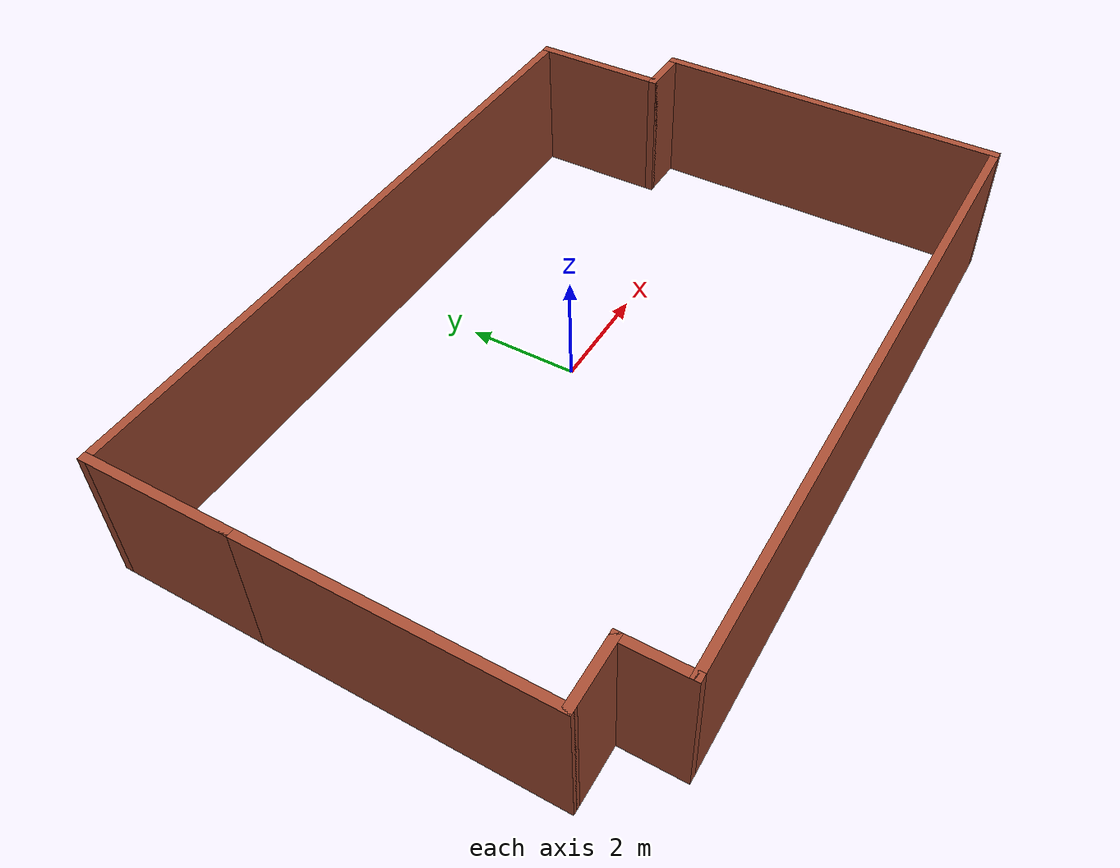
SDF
<?xml version='1.0'?>
<sdf version='1.6'>
  <model name='brick_wall'>
    <pose frame=''>-0.26791 -0.706065 0 0 -0 0</pose>
    <link name='Wall_0'>
      <collision name='Wall_0_Collision'>
        <geometry>
          <box>
            <size>5.25 0.15 2.5</size>
          </box>
        </geometry>
        <pose frame=''>0 0 1.25 0 -0 0</pose>
      </collision>
      <visual name='Wall_0_Visual'>
        <pose frame=''>0 0 1.25 0 -0 0</pose>
        <geometry>
          <box>
            <size>5.25 0.15 2.5</size>
          </box>
        </geometry>
        <material>
          <script>
            <uri>file://media/materials/scripts/gazebo.material</uri>
            <name>Gazebo/Bricks</name>
          </script>
          <ambient>1 1 1 1</ambient>
        </material>
        <meta>
          <layer>0</layer>
        </meta>
      </visual>
      <pose frame=''>-6.475 -0.7 0 0 0 -1.5708</pose>
    </link>
    <link name='Wall_1'>
      <collision name='Wall_1_Collision'>
        <geometry>
          <box>
            <size>1.25 0.15 2.5</size>
          </box>
        </geometry>
        <pose frame=''>0 0 1.25 0 -0 0</pose>
      </collision>
      <visual name='Wall_1_Visual'>
        <pose frame=''>0 0 1.25 0 -0 0</pose>
        <geometry>
          <box>
            <size>1.25 0.15 2.5</size>
          </box>
        </geometry>
        <material>
          <script>
            <uri>file://media/materials/scripts/gazebo.material</uri>
            <name>Gazebo/Bricks</name>
          </script>
          <ambient>1 1 1 1</ambient>
        </material>
        <meta>
          <layer>0</layer>
        </meta>
      </visual>
      <pose frame=''>-5.925 -3.25 0 0 -0 0</pose>
    </link>
    <link name='Wall_2'>
      <collision name='Wall_2_Collision'>
        <geometry>
          <box>
            <size>1.25 0.15 2.5</size>
          </box>
        </geometry>
        <pose frame=''>0 0 1.25 0 -0 0</pose>
      </collision>
      <visual name='Wall_2_Visual'>
        <pose frame=''>0 0 1.25 0 -0 0</pose>
        <geometry>
          <box>
            <size>1.25 0.15 2.5</size>
          </box>
        </geometry>
        <material>
          <script>
            <uri>file://media/materials/scripts/gazebo.material</uri>
            <name>Gazebo/Bricks</name>
          </script>
          <ambient>1 1 1 1</ambient>
        </material>
        <meta>
          <layer>0</layer>
        </meta>
      </visual>
      <pose frame=''>-5.375 -3.8 0 0 0 -1.5708</pose>
    </link>
    <link name='Wall_3'>
      <collision name='Wall_3_Collision'>
        <geometry>
          <box>
            <size>12 0.15 2.5</size>
          </box>
        </geometry>
        <pose frame=''>0 0 1.25 0 -0 0</pose>
      </collision>
      <visual name='Wall_3_Visual'>
        <pose frame=''>0 0 1.25 0 -0 0</pose>
        <geometry>
          <box>
            <size>12 0.15 2.5</size>
          </box>
        </geometry>
        <material>
          <script>
            <uri>file://media/materials/scripts/gazebo.material</uri>
            <name>Gazebo/Bricks</name>
          </script>
          <ambient>1 1 1 1</ambient>
        </material>
        <meta>
          <layer>0</layer>
        </meta>
      </visual>
      <pose frame=''>0.55 -4.35 0 0 -0 0</pose>
    </link>
    <link name='Wall_4'>
      <collision name='Wall_4_Collision'>
        <geometry>
          <box>
            <size>6.5 0.15 2.5</size>
          </box>
        </geometry>
        <pose frame=''>0 0 1.25 0 -0 0</pose>
      </collision>
      <visual name='Wall_4_Visual'>
        <pose frame=''>0 0 1.25 0 -0 0</pose>
        <geometry>
          <box>
            <size>6.5 0.15 2.5</size>
          </box>
        </geometry>
        <material>
          <script>
            <uri>file://media/materials/scripts/gazebo.material</uri>
            <name>Gazebo/Bricks</name>
          </script>
          <ambient>1 1 1 1</ambient>
        </material>
        <meta>
          <layer>0</layer>
        </meta>
      </visual>
      <pose frame=''>6.475 -1.175 0 0 -0 1.5708</pose>
    </link>
    <link name='Wall_5'>
      <collision name='Wall_5_Collision'>
        <geometry>
          <box>
            <size>1 0.15 2.5</size>
          </box>
        </geometry>
        <pose frame=''>0 0 1.25 0 -0 0</pose>
      </collision>
      <visual name='Wall_5_Visual'>
        <pose frame=''>0 0 1.25 0 -0 0</pose>
        <geometry>
          <box>
            <size>1 0.15 2.5</size>
          </box>
        </geometry>
        <material>
          <script>
            <uri>file://media/materials/scripts/gazebo.material</uri>
            <name>Gazebo/Bricks</name>
          </script>
          <ambient>1 1 1 1</ambient>
        </material>
        <meta>
          <layer>0</layer>
        </meta>
      </visual>
      <pose frame=''>6.05 2 0 0 -0 3.14159</pose>
    </link>
    <link name='Wall_7'>
      <collision name='Wall_7_Collision'>
        <geometry>
          <box>
            <size>2.5 0.15 2.5</size>
          </box>
        </geometry>
        <pose frame=''>0 0 1.25 0 -0 0</pose>
      </collision>
      <visual name='Wall_7_Visual'>
        <pose frame=''>0 0 1.25 0 -0 0</pose>
        <geometry>
          <box>
            <size>2.5 0.15 2.5</size>
          </box>
        </geometry>
        <material>
          <script>
            <uri>file://media/materials/scripts/gazebo.material</uri>
            <name>Gazebo/Bricks</name>
          </script>
          <ambient>1 1 1 1</ambient>
        </material>
        <meta>
          <layer>0</layer>
        </meta>
      </visual>
      <pose frame=''>5.625 3.175 0 0 -0 1.5708</pose>
    </link>
    <link name='Wall_8'>
      <collision name='Wall_8_Collision'>
        <geometry>
          <box>
            <size>12.25 0.15 2.5</size>
          </box>
        </geometry>
        <pose frame=''>0 0 1.25 0 -0 0</pose>
      </collision>
      <visual name='Wall_8_Visual'>
        <pose frame=''>0 0 1.25 0 -0 0</pose>
        <geometry>
          <box>
            <size>12.25 0.15 2.5</size>
          </box>
        </geometry>
        <material>
          <script>
            <uri>file://media/materials/scripts/gazebo.material</uri>
            <name>Gazebo/Bricks</name>
          </script>
          <ambient>1 1 1 1</ambient>
        </material>
        <meta>
          <layer>0</layer>
        </meta>
      </visual>
      <pose frame=''>-0.425 4.35 0 0 -0 3.14159</pose>
    </link>
    <link name='Wall_9'>
      <collision name='Wall_9_Collision'>
        <geometry>
          <box>
            <size>2.65 0.15 2.5</size>
          </box>
        </geometry>
        <pose frame=''>0 0 1.25 0 -0 0</pose>
      </collision>
      <visual name='Wall_9_Visual'>
        <pose frame=''>0 0 1.25 0 -0 0</pose>
        <geometry>
          <box>
            <size>2.65 0.15 2.5</size>
          </box>
        </geometry>
        <material>
          <script>
            <uri>file://media/materials/scripts/gazebo.material</uri>
            <name>Gazebo/Bricks</name>
          </script>
          <ambient>1 1 1 1</ambient>
        </material>
        <meta>
          <layer>0</layer>
        </meta>
      </visual>
      <pose frame=''>-6.475 3.1 0 0 0 -1.5708</pose>
    </link>
    <static>1</static>
  </model>
</sdf>
